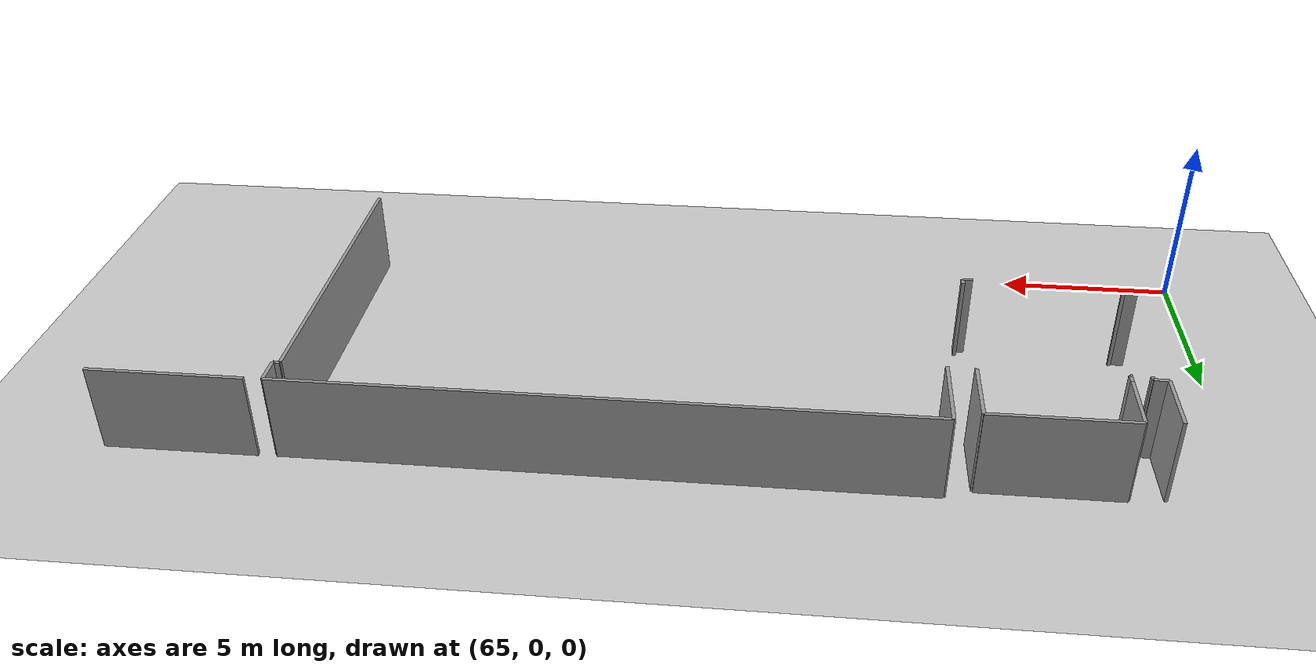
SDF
<sdf version="1.6">
 <world name="default">
  <model name="ground_plane">
   <static>1</static>
   <link name="link">
    <collision name="collision">
     <geometry><plane><normal>0 0 1</normal><size>100 100</size></plane></geometry>
     <surface><friction><ode><mu>100</mu><mu2>50</mu2></ode></friction></surface>
    </collision>
    <visual name="visual">
     <cast_shadows>0</cast_shadows>
     <geometry><plane><normal>0 0 1</normal><size>100 100</size></plane></geometry>
     <material>
      <script><uri>file://media/materials/scripts/gazebo.material</uri><name>Gazebo/Grey</name></script>
     </material>
    </visual>
   </link>
  </model>
  <model name="0510035519_A_40_1_102">
   <static>1</static>
   <link name="Wall_728">
    <collision name="Wall_728_Collision">
     <geometry><box><size>1.79489134579 0.1 2.5</size></box></geometry>
     <pose>0.897445672894 0 1.25 0 0 0</pose>
    </collision>
    <visual name="Wall_728_Visual">
     <pose>0.897445672894 0 1.25 0 0 0</pose>
     <geometry><box><size>1.79489134579 0.1 2.5</size></box></geometry>
     <material>
      <script><uri>file://media/materials/scripts/gazebo.material</uri><name>Gazebo/Grey</name></script>
      <ambient>1 1 1 1</ambient>
     </material>
    </visual>
    <pose>183.6657771 -58.4793493455 0 0 0 -1.57079632679</pose>
   </link>
   <link name="Wall_729">
    <collision name="Wall_729_Collision">
     <geometry><box><size>0.401575803787 0.1 2.5</size></box></geometry>
     <pose>0.200787901894 0 1.25 0 0 0</pose>
    </collision>
    <visual name="Wall_729_Visual">
     <pose>0.200787901894 0 1.25 0 0 0</pose>
     <geometry><box><size>0.401575803787 0.1 2.5</size></box></geometry>
     <material>
      <script><uri>file://media/materials/scripts/gazebo.material</uri><name>Gazebo/Grey</name></script>
      <ambient>1 1 1 1</ambient>
     </material>
    </visual>
    <pose>183.6657771 -60.2742406913 0 0 0 0.0</pose>
   </link>
   <link name="Wall_730">
    <collision name="Wall_730_Collision">
     <geometry><box><size>0.131147540984 0.1 2.5</size></box></geometry>
     <pose>0.0655737704918 0 1.25 0 0 0</pose>
    </collision>
    <visual name="Wall_730_Visual">
     <pose>0.0655737704918 0 1.25 0 0 0</pose>
     <geometry><box><size>0.131147540984 0.1 2.5</size></box></geometry>
     <material>
      <script><uri>file://media/materials/scripts/gazebo.material</uri><name>Gazebo/Grey</name></script>
      <ambient>1 1 1 1</ambient>
     </material>
    </visual>
    <pose>184.067352904 -60.2742406913 0 0 0 -1.57079632679</pose>
   </link>
   <link name="Wall_731">
    <collision name="Wall_731_Collision">
     <geometry><box><size>0.0785360274495 0.1 2.5</size></box></geometry>
     <pose>0.0392680137247 0 1.25 0 0 0</pose>
    </collision>
    <visual name="Wall_731_Visual">
     <pose>0.0392680137247 0 1.25 0 0 0</pose>
     <geometry><box><size>0.0785360274495 0.1 2.5</size></box></geometry>
     <material>
      <script><uri>file://media/materials/scripts/gazebo.material</uri><name>Gazebo/Grey</name></script>
      <ambient>1 1 1 1</ambient>
     </material>
    </visual>
    <pose>184.067352904 -64.4674037362 0 0 0 -1.57079632679</pose>
   </link>
   <link name="Wall_732">
    <collision name="Wall_732_Collision">
     <geometry><box><size>0.402592451392 0.1 2.5</size></box></geometry>
     <pose>0.201296225696 0 1.25 0 0 0</pose>
    </collision>
    <visual name="Wall_732_Visual">
     <pose>0.201296225696 0 1.25 0 0 0</pose>
     <geometry><box><size>0.402592451392 0.1 2.5</size></box></geometry>
     <material>
      <script><uri>file://media/materials/scripts/gazebo.material</uri><name>Gazebo/Grey</name></script>
      <ambient>1 1 1 1</ambient>
     </material>
    </visual>
    <pose>184.067352904 -64.5459397636 0 0 0 3.14159265359</pose>
   </link>
   <link name="Wall_747">
    <collision name="Wall_747_Collision">
     <geometry><box><size>1.74024653704 0.1 2.5</size></box></geometry>
     <pose>0.870123268522 0 1.25 0 0 0</pose>
    </collision>
    <visual name="Wall_747_Visual">
     <pose>0.870123268522 0 1.25 0 0 0</pose>
     <geometry><box><size>1.74024653704 0.1 2.5</size></box></geometry>
     <material>
      <script><uri>file://media/materials/scripts/gazebo.material</uri><name>Gazebo/Grey</name></script>
      <ambient>1 1 1 1</ambient>
     </material>
    </visual>
    <pose>184.619646715 -60.1499555217 0 0 0 1.57079632679</pose>
   </link>
   <link name="Wall_748">
    <collision name="Wall_748_Collision">
     <geometry><box><size>3.90138518236 0.1 2.5</size></box></geometry>
     <pose>1.95069259118 0 1.25 0 0 0</pose>
    </collision>
    <visual name="Wall_748_Visual">
     <pose>1.95069259118 0 1.25 0 0 0</pose>
     <geometry><box><size>3.90138518236 0.1 2.5</size></box></geometry>
     <material>
      <script><uri>file://media/materials/scripts/gazebo.material</uri><name>Gazebo/Grey</name></script>
      <ambient>1 1 1 1</ambient>
     </material>
    </visual>
    <pose>184.619646715 -58.4097089846 0 0 0 0.0</pose>
   </link>
   <link name="Wall_749">
    <collision name="Wall_749_Collision">
     <geometry><box><size>1.92120981065 0.1 2.5</size></box></geometry>
     <pose>0.960604905325 0 1.25 0 0 0</pose>
    </collision>
    <visual name="Wall_749_Visual">
     <pose>0.960604905325 0 1.25 0 0 0</pose>
     <geometry><box><size>1.92120981065 0.1 2.5</size></box></geometry>
     <material>
      <script><uri>file://media/materials/scripts/gazebo.material</uri><name>Gazebo/Grey</name></script>
      <ambient>1 1 1 1</ambient>
     </material>
    </visual>
    <pose>188.521031897 -58.4097089846 0 0 0 -1.57079632679</pose>
   </link>
   <link name="Wall_750">
    <collision name="Wall_750_Collision">
     <geometry><box><size>0.238658025162 0.1 2.5</size></box></geometry>
     <pose>0.119329012581 0 1.25 0 0 0</pose>
    </collision>
    <visual name="Wall_750_Visual">
     <pose>0.119329012581 0 1.25 0 0 0</pose>
     <geometry><box><size>0.238658025162 0.1 2.5</size></box></geometry>
     <material>
      <script><uri>file://media/materials/scripts/gazebo.material</uri><name>Gazebo/Grey</name></script>
      <ambient>1 1 1 1</ambient>
     </material>
    </visual>
    <pose>188.521031897 -64.5314525353 0 0 0 -1.57079632679</pose>
   </link>
   <link name="Wall_751">
    <collision name="Wall_751_Collision">
     <geometry><box><size>0.284153005465 0.1 2.5</size></box></geometry>
     <pose>0.142076502732 0 1.25 0 0 0</pose>
    </collision>
    <visual name="Wall_751_Visual">
     <pose>0.142076502732 0 1.25 0 0 0</pose>
     <geometry><box><size>0.284153005465 0.1 2.5</size></box></geometry>
     <material>
      <script><uri>file://media/materials/scripts/gazebo.material</uri><name>Gazebo/Grey</name></script>
      <ambient>1 1 1 1</ambient>
     </material>
    </visual>
    <pose>188.521031897 -64.7701105604 0 0 0 3.14159265359</pose>
   </link>
   <link name="Wall_754">
    <collision name="Wall_754_Collision">
     <geometry><box><size>0.0487990850172 0.1 2.5</size></box></geometry>
     <pose>0.0243995425086 0 1.25 0 0 0</pose>
    </collision>
    <visual name="Wall_754_Visual">
     <pose>0.0243995425086 0 1.25 0 0 0</pose>
     <geometry><box><size>0.0487990850172 0.1 2.5</size></box></geometry>
     <material>
      <script><uri>file://media/materials/scripts/gazebo.material</uri><name>Gazebo/Grey</name></script>
      <ambient>1 1 1 1</ambient>
     </material>
    </visual>
    <pose>184.573643411 -60.3944592706 0 0 0 0.0</pose>
   </link>
   <link name="Wall_755">
    <collision name="Wall_755_Collision">
     <geometry><box><size>0.24451973256 0.1 2.5</size></box></geometry>
     <pose>0.12225986628 0 1.25 0 0 0</pose>
    </collision>
    <visual name="Wall_755_Visual">
     <pose>0.12225986628 0 1.25 0 0 0</pose>
     <geometry><box><size>0.24451973256 0.1 2.5</size></box></geometry>
     <material>
      <script><uri>file://media/materials/scripts/gazebo.material</uri><name>Gazebo/Grey</name></script>
      <ambient>1 1 1 1</ambient>
     </material>
    </visual>
    <pose>184.622442496 -60.3944592706 0 0 0 1.58223033992</pose>
   </link>
   <link name="Wall_922">
    <collision name="Wall_922_Collision">
     <geometry><box><size>17.4662600076 0.1 2.5</size></box></geometry>
     <pose>8.73313000381 0 1.25 0 0 0</pose>
    </collision>
    <visual name="Wall_922_Visual">
     <pose>8.73313000381 0 1.25 0 0 0</pose>
     <geometry><box><size>17.4662600076 0.1 2.5</size></box></geometry>
     <material>
      <script><uri>file://media/materials/scripts/gazebo.material</uri><name>Gazebo/Grey</name></script>
      <ambient>1 1 1 1</ambient>
     </material>
    </visual>
    <pose>189.266234591 -58.1186936078 0 0 0 0.0</pose>
   </link>
   <link name="Wall_923">
    <collision name="Wall_923_Collision">
     <geometry><box><size>0.749523446435 0.1 2.5</size></box></geometry>
     <pose>0.374761723218 0 1.25 0 0 0</pose>
    </collision>
    <visual name="Wall_923_Visual">
     <pose>0.374761723218 0 1.25 0 0 0</pose>
     <geometry><box><size>0.749523446435 0.1 2.5</size></box></geometry>
     <material>
      <script><uri>file://media/materials/scripts/gazebo.material</uri><name>Gazebo/Grey</name></script>
      <ambient>1 1 1 1</ambient>
     </material>
    </visual>
    <pose>206.732494599 -58.1186936078 0 0 0 -1.57079632679</pose>
   </link>
   <link name="Wall_924">
    <collision name="Wall_924_Collision">
     <geometry><box><size>0.189858940145 0.1 2.5</size></box></geometry>
     <pose>0.0949294700724 0 1.25 0 0 0</pose>
    </collision>
    <visual name="Wall_924_Visual">
     <pose>0.0949294700724 0 1.25 0 0 0</pose>
     <geometry><box><size>0.189858940145 0.1 2.5</size></box></geometry>
     <material>
      <script><uri>file://media/materials/scripts/gazebo.material</uri><name>Gazebo/Grey</name></script>
      <ambient>1 1 1 1</ambient>
     </material>
    </visual>
    <pose>206.732494599 -58.8682170543 0 0 0 3.14159265359</pose>
   </link>
   <link name="Wall_925">
    <collision name="Wall_925_Collision">
     <geometry><box><size>9.09340449867 0.1 2.5</size></box></geometry>
     <pose>4.54670224933 0 1.25 0 0 0</pose>
    </collision>
    <visual name="Wall_925_Visual">
     <pose>4.54670224933 0 1.25 0 0 0</pose>
     <geometry><box><size>9.09340449867 0.1 2.5</size></box></geometry>
     <material>
      <script><uri>file://media/materials/scripts/gazebo.material</uri><name>Gazebo/Grey</name></script>
      <ambient>1 1 1 1</ambient>
     </material>
    </visual>
    <pose>206.542635659 -58.8682170543 0 0 0 -1.57079632679</pose>
   </link>
   <link name="Wall_943">
    <collision name="Wall_943_Collision">
     <geometry><box><size>2.2284948102 0.1 2.5</size></box></geometry>
     <pose>1.1142474051 0 1.25 0 0 0</pose>
    </collision>
    <visual name="Wall_943_Visual">
     <pose>1.1142474051 0 1.25 0 0 0</pose>
     <geometry><box><size>2.2284948102 0.1 2.5</size></box></geometry>
     <material>
      <script><uri>file://media/materials/scripts/gazebo.material</uri><name>Gazebo/Grey</name></script>
      <ambient>1 1 1 1</ambient>
     </material>
    </visual>
    <pose>189.27004702 -60.3471851569 0 0 0 1.57250709155</pose>
   </link>
   <link name="Wall_1104">
    <collision name="Wall_1104_Collision">
     <geometry><box><size>4.25543271064 0.1 2.5</size></box></geometry>
     <pose>2.12771635532 0 1.25 0 0 0</pose>
    </collision>
    <visual name="Wall_1104_Visual">
     <pose>2.12771635532 0 1.25 0 0 0</pose>
     <geometry><box><size>4.25543271064 0.1 2.5</size></box></geometry>
     <material>
      <script><uri>file://media/materials/scripts/gazebo.material</uri><name>Gazebo/Grey</name></script>
      <ambient>1 1 1 1</ambient>
     </material>
    </visual>
    <pose>207.230906087 -58.0945482272 0 0 0 0.0</pose>
   </link>
   <pose>-116.6 68.721527513 0 0 0 0</pose>
  </model>
 </world>
</sdf>
